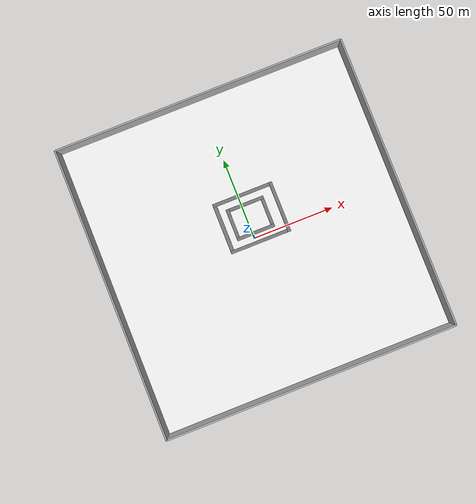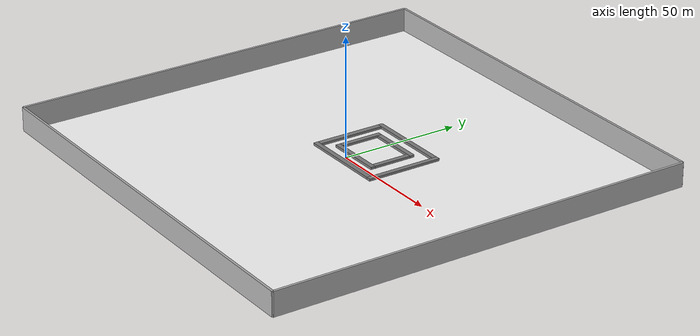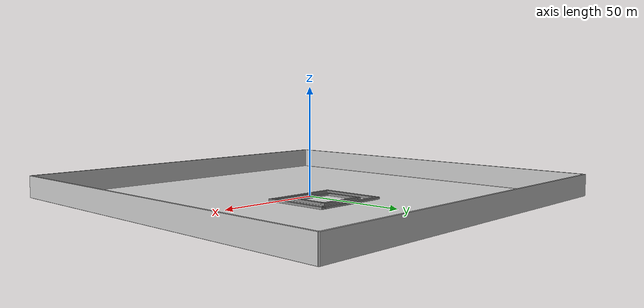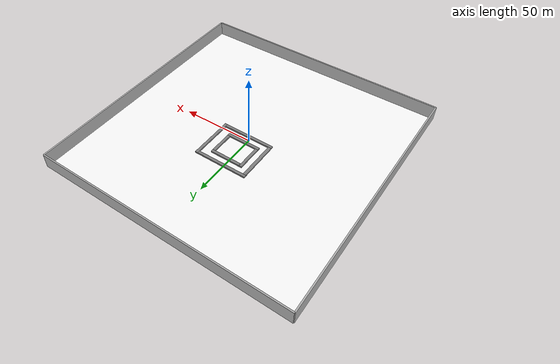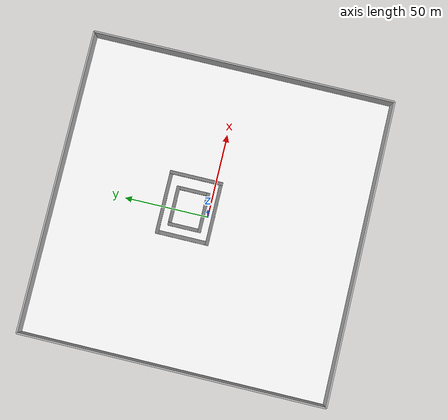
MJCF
<mujoco model="TurboV1">

  <compiler meshdir="/Users/venky/Documents/Projects/DRL_TurboEngine/DRLTurboEngines/DRL_TurboEngine_V1/Tracks_STL/Track_V1"/>
  <compiler angle="degree" coordinate="local"/>
  <option timestep="0.01"/>

  <default>
    <joint armature="0.01" damping="1" limited="true"/>
  </default>

  <asset>
    <mesh name="track1" file="Track1.stl" scale="0.2 0.05 0.2"/>
    <mesh name="track2" file="Track2.stl" scale="0.2 0.05 0.2"/>
    <mesh name="track3" file="Track3.stl" scale="0.2 0.05 0.2"/>
    <mesh name="track4" file="Track4.stl" scale="0.2 0.05 0.2"/>
    <mesh name="track5" file="Track5.stl" scale="0.2 0.05 0.2"/>
    <mesh name="track6" file="Track6.stl" scale="0.2 0.05 0.2"/>
    <mesh name="track7" file="Track7.stl" scale="0.2 0.05 0.2"/>
    <mesh name="track8" file="Track8.stl" scale="0.2 0.05 0.2"/>

  </asset>

  <worldbody>
    <geom name="ground Plane" type="plane" pos="0 0 0" size="90 90 1" rgba="1 1 1 1"/>
    <geom name="wall_boundary1" type="box" pos="90 0 5" size="0.5 90 5" rgba="0.7 0.7 0.7 1" contype="1" conaffinity="1"/>
    <geom name="wall_boundary2"  type="box" pos="-90 0 5" size="0.5 90 5" rgba="0.7 0.7 0.7 1" contype="1" conaffinity="1"/>
    <geom name="wall_boundary3"  type="box" pos="0 -90 5" size="90 0.5 5" rgba="0.7 0.7 0.7 1" contype="1" conaffinity="1"/>
    <geom name="wall_boundary4" type="box" pos="0 90 5" size="90 0.5 5" rgba="0.7 0.7 0.7 1" contype="1" conaffinity="1"/>

    <geom type="mesh" mesh="track1" xyaxes="1 0 0 0 0 1" pos="0 0 0" contype="1" conaffinity="1"/>
    <geom type="mesh" mesh="track2" xyaxes="1 0 0 0 0 1" pos="0 0 0" contype="1" conaffinity="1"/>
    <geom type="mesh" mesh="track3" xyaxes="1 0 0 0 0 1" pos="0 0 0" contype="1" conaffinity="1"/>
    <geom type="mesh" mesh="track4" xyaxes="1 0 0 0 0 1" pos="0 0 0" contype="1" conaffinity="1"/>
    <geom type="mesh" mesh="track5" xyaxes="1 0 0 0 0 1" pos="0 0 0" contype="1" conaffinity="1"/>
    <geom type="mesh" mesh="track6" xyaxes="1 0 0 0 0 1" pos="0 0 0" contype="1" conaffinity="1"/>
    <geom type="mesh" mesh="track7" xyaxes="1 0 0 0 0 1" pos="0 0 0" contype="1" conaffinity="1"/>
    <geom type="mesh" mesh="track8" xyaxes="1 0 0 0 0 1" pos="0 0 0" contype="1" conaffinity="1"/>

    <body name="chassis" pos="0 0 0.5">
      <geom name="chassis_geom" type="box" size="0.3 0.15 0.05" rgba="0.3 0.3 0.3 1" mass="100" contype="1" conaffinity="1"/>
      <joint name="chassis_free" type="free"/>

      <site name="ray_site_front" pos="0.3 0 0.1" quat="0.7071 0 -0.7071 0" type="sphere" size="0.05"/>
      <site name="ray_site_right1" pos="0.125 0.17 0.1" quat="0.7071 0.7071 0 0" type="sphere" size="0.05"/>
      <site name="ray_site_right2" pos="-0.125 0.17 0.1" quat="0.7071 0.7071 0 0" type="sphere" size="0.05"/>
      <site name="ray_site_back" pos="-0.3 0 0.1" quat="0 -0.7071 0 -0.7071" type="sphere" size="0.05"/>
      <site name="ray_site_left1" pos="0.125 -0.17 0.1" quat="0.7071 -0.7071 0 0" type="sphere" size="0.05"/>
      <site name="ray_site_left2" pos="-0.125 -0.17 0.1" quat="0.7071 -0.7071 0 0" type="sphere" size="0.05"/>
      <site name="imu_site" pos="0 0 0.1" size="0.05" rgba="0 1 0 1"/>

      <body name="rear_left" pos="0.3 -0.25 0" euler="90 0 0">
        <joint name="rear_left_axle" type="hinge" axis="0 0 1" limited="false"/>
        <geom name="rear_left_wheel" type="cylinder" size="0.08 0.04" rgba="0.7 0.7 0.7 1" mass="20" contype="1" conaffinity="1"/>
      </body>

      <body name="rear_right" pos="0.3 0.25 0" euler="90 0 0">
        <joint name="rear_right_axle" type="hinge" axis="0 0 1" limited="false"/>
        <geom name="rear_right_wheel" type="cylinder" size="0.08 0.04" rgba="0.7 0.7 0.7 1" mass="20" contype="1" conaffinity="1"/>
      </body>

      <body name="front_left_mount" pos="-0.3 -0.25 0" euler="0 90 0">
        <inertial pos="0 0 0" mass="0.001" diaginertia="0.001 0.001 0.001"/>
        <joint name="front_left_steer" type="hinge" axis="1 0 0" limited="true" range="-20 20"/>
        <body name="front_left" pos="0 0 0" euler="90 0 0">
          <joint name="front_left_axle" type="hinge" axis="0 0 1" limited="false"/>
          <geom name="front_left_wheel" type="cylinder" size="0.08 0.04" rgba="0.7 0.7 0.7 1" mass="20" friction="0.1 0.1 0.1" condim="1" contype="1" conaffinity="1"/>
        </body>
      </body>

      <body name="front_right_mount" pos="-0.3 0.25 0" euler="0 90 0">
        <inertial pos="0 0 0" mass="0.001" diaginertia="0.001 0.001 0.001"/>
        <joint name="front_right_steer" type="hinge" axis="1 0 0" limited="true" range="-20 20"/>
        <body name="front_right" pos="0 0 0" euler="90 0 0">
          <joint name="front_right_axle" type="hinge" axis="0 0 1" limited="false"/>
          <geom name="front_right_wheel" type="cylinder" size="0.08 0.04" rgba="0.7 0.7 0.7 1" mass="20" friction="0.1 0.1 0.1" condim="1" contype="1" conaffinity="1"/>
        </body>
      </body>
    </body>
  </worldbody>

  <tendon>
      <fixed name="rear_axles">
        <joint joint="rear_left_axle" coef="1"/>
        <joint joint="rear_right_axle" coef="1"/>
      </fixed>

      <fixed name="front_steer">
        <joint joint="front_left_steer" coef="1"/>
        <joint joint="front_right_steer" coef="1"/>
      </fixed>
   </tendon>

  <actuator>
    <motor name="rear_drive" tendon="rear_axles" gear="25" ctrlrange="0 1"/>
    <position name="front_steer_ctrl" tendon="front_steer" kp="100" ctrlrange="-1 1"/>
  </actuator>

  <sensor>
    <rangefinder name="lidar_front" site="ray_site_front" cutoff="5"/>
    <rangefinder name="lidar_right1" site="ray_site_right1" cutoff="5"/>
    <rangefinder name="lidar_right2" site="ray_site_right2" cutoff="5"/>
    <rangefinder name="lidar_back" site="ray_site_back" cutoff="5"/>
    <rangefinder name="lidar_left1" site="ray_site_left1" cutoff="5"/>
    <rangefinder name="lidar_left2" site="ray_site_left2" cutoff="5"/>
    <velocimeter name="imu_velocity" site="imu_site"/>
    <accelerometer name="imu_acceleration" site="imu_site"/>
  </sensor>
</mujoco>
